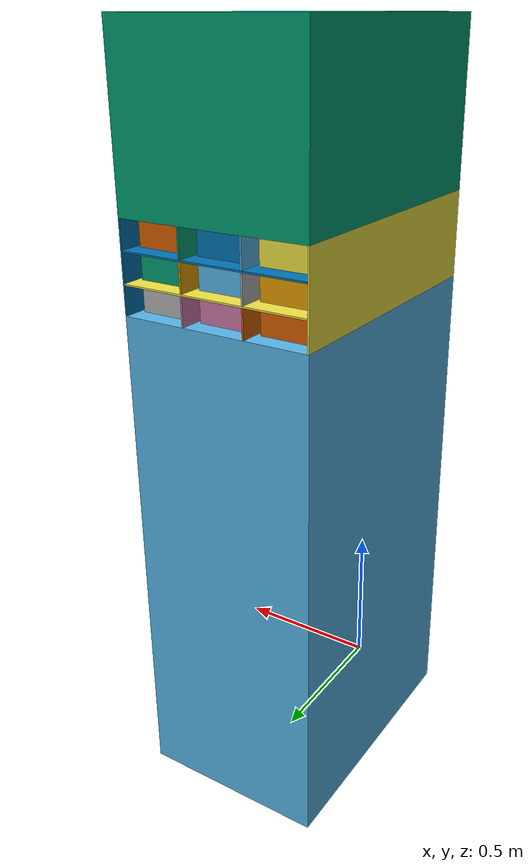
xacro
<?xml version="1.0"?>
<robot xmlns:xacro="http://ros.org/wiki/xacro" name="battery">

  <xacro:property name="M_PI" value="3.1415926535897931" />
  <xacro:property name="distance" value="0.7" />

  <link name="world" />

  <link name="cabinet1">
    <inertial>
      <origin rpy="0 0 0" xyz="0 0 0"/>
      <mass value="1.0"/>
      <inertia ixx="0.001" ixy="0.0" ixz="-0.0" iyy="0.001" iyz="-0.0" izz="0.001"/>
    </inertial>
    <visual>
      <origin rpy="0 0 0 " xyz="0 0 0"/>
      <geometry>
        <mesh filename="package://battery_description/meshes/cabinet1.STL"/>
      </geometry>
    </visual>
    <collision>
      <origin rpy="0 0 0" xyz="0 0 0"/>
      <geometry>
        <mesh filename="package://battery_description/meshes/cabinet1.STL"/>
      </geometry>
    </collision>
  </link>

  <joint name="cabinet1_world" type="fixed">
    <parent link="world" />
    <child link="cabinet1" />
    <origin rpy="0 0 0" xyz="0 0 0" />
  </joint>

  <link name="cabinet2">
    <inertial>
      <origin rpy="0 0 0" xyz="0 0 0"/>
      <mass value="1.0"/>
      <inertia ixx="0.001" ixy="0.0" ixz="-0.0" iyy="0.001" iyz="-0.0" izz="0.001"/>
    </inertial>
    <visual>
      <origin rpy="0 0 0 " xyz="0 0 0"/>
      <geometry>
        <mesh filename="package://battery_description/meshes/cabinet2.STL"/>
      </geometry>
    </visual>
    <collision>
      <origin rpy="0 0 0" xyz="0 0 0"/>
      <geometry>
        <mesh filename="package://battery_description/meshes/cabinet2.STL"/>
      </geometry>
    </collision>
  </link>

  <joint name="cabinet2_joint" type="fixed">
    <parent link="cabinet1" />
    <child link="cabinet2" />
    <origin rpy="0 0 0" xyz="0	0	1.84" />
  </joint>

  <link name="vertical1">
    <inertial>
      <origin rpy="0 0 0" xyz="0 0 0"/>
      <mass value="1.0"/>
      <inertia ixx="0.001" ixy="0.0" ixz="-0.0" iyy="0.001" iyz="-0.0" izz="0.001"/>
    </inertial>
    <visual>
      <origin rpy="0 0 0 " xyz="0 0 0"/>
      <geometry>
        <mesh filename="package://battery_description/meshes/vertical_plate.STL"/>
      </geometry>
    </visual>
    <collision>
      <origin rpy="0 0 0" xyz="0 0 0"/>
      <geometry>
        <mesh filename="package://battery_description/meshes/vertical_plate.STL"/>
      </geometry>
    </collision>
  </link>

  <joint name="vertical_joint1" type="fixed">
    <parent link="cabinet1" />
    <child link="vertical1" />
    <origin rpy="0 0 0" xyz="-0.2979	0	1.705" />
  </joint>

  <link name="vertical2">
    <inertial>
      <origin rpy="0 0 0" xyz="0 0 0"/>
      <mass value="1.0"/>
      <inertia ixx="0.001" ixy="0.0" ixz="-0.0" iyy="0.001" iyz="-0.0" izz="0.001"/>
    </inertial>
    <visual>
      <origin rpy="0 0 0 " xyz="0 0 0"/>
      <geometry>
        <mesh filename="package://battery_description/meshes/vertical_plate.STL"/>
      </geometry>
    </visual>
    <collision>
      <origin rpy="0 0 0" xyz="0 0 0"/>
      <geometry>
        <mesh filename="package://battery_description/meshes/vertical_plate.STL"/>
      </geometry>
    </collision>
  </link>

  <joint name="vertical_joint2" type="fixed">
    <parent link="cabinet1" />
    <child link="vertical2" />
    <origin rpy="0 0 0" xyz="0.2929	0	1.705" />
  </joint>

  <link name="vertical3">
    <inertial>
      <origin rpy="0 0 0" xyz="0 0 0"/>
      <mass value="1.0"/>
      <inertia ixx="0.001" ixy="0.0" ixz="-0.0" iyy="0.001" iyz="-0.0" izz="0.001"/>
    </inertial>
    <visual>
      <origin rpy="0 0 0 " xyz="0 0 0"/>
      <geometry>
        <mesh filename="package://battery_description/meshes/vertical_plate2.STL"/>
      </geometry>
    </visual>
    <collision>
      <origin rpy="0 0 0" xyz="0 0 0"/>
      <geometry>
        <mesh filename="package://battery_description/meshes/vertical_plate2.STL"/>
      </geometry>
    </collision>
  </link>

  <joint name="vertical_joint3" type="fixed">
    <parent link="cabinet1" />
    <child link="vertical3" />
    <origin rpy="0 0 0" xyz="-0.1009	0	1.6133" />
  </joint>

  <link name="vertical4">
    <inertial>
      <origin rpy="0 0 0" xyz="0 0 0"/>
      <mass value="1.0"/>
      <inertia ixx="0.001" ixy="0.0" ixz="-0.0" iyy="0.001" iyz="-0.0" izz="0.001"/>
    </inertial>
    <visual>
      <origin rpy="0 0 0 " xyz="0 0 0"/>
      <geometry>
        <mesh filename="package://battery_description/meshes/vertical_plate2.STL"/>
      </geometry>
    </visual>
    <collision>
      <origin rpy="0 0 0" xyz="0 0 0"/>
      <geometry>
        <mesh filename="package://battery_description/meshes/vertical_plate2.STL"/>
      </geometry>
    </collision>
  </link>

  <joint name="vertical_joint4" type="fixed">
    <parent link="cabinet1" />
    <child link="vertical4" />
    <origin rpy="0 0 0" xyz="0.0961	0	1.6133" />
  </joint>

  <link name="vertical5">
    <inertial>
      <origin rpy="0 0 0" xyz="0 0 0"/>
      <mass value="1.0"/>
      <inertia ixx="0.001" ixy="0.0" ixz="-0.0" iyy="0.001" iyz="-0.0" izz="0.001"/>
    </inertial>
    <visual>
      <origin rpy="0 0 0 " xyz="0 0 0"/>
      <geometry>
        <mesh filename="package://battery_description/meshes/vertical_plate2.STL"/>
      </geometry>
    </visual>
    <collision>
      <origin rpy="0 0 0" xyz="0 0 0"/>
      <geometry>
        <mesh filename="package://battery_description/meshes/vertical_plate2.STL"/>
      </geometry>
    </collision>
  </link>

  <joint name="vertical_joint5" type="fixed">
    <parent link="cabinet1" />
    <child link="vertical5" />
    <origin rpy="0 0 0" xyz="-0.1009	0	1.705" />
  </joint>

  <link name="vertical6">
    <inertial>
      <origin rpy="0 0 0" xyz="0 0 0"/>
      <mass value="1.0"/>
      <inertia ixx="0.001" ixy="0.0" ixz="-0.0" iyy="0.001" iyz="-0.0" izz="0.001"/>
    </inertial>
    <visual>
      <origin rpy="0 0 0 " xyz="0 0 0"/>
      <geometry>
        <mesh filename="package://battery_description/meshes/vertical_plate2.STL"/>
      </geometry>
    </visual>
    <collision>
      <origin rpy="0 0 0" xyz="0 0 0"/>
      <geometry>
        <mesh filename="package://battery_description/meshes/vertical_plate2.STL"/>
      </geometry>
    </collision>
  </link>

  <joint name="vertical_joint6" type="fixed">
    <parent link="cabinet1" />
    <child link="vertical6" />
    <origin rpy="0 0 0" xyz="0.0961	0	1.705" />
  </joint>

  <link name="vertical7">
    <inertial>
      <origin rpy="0 0 0" xyz="0 0 0"/>
      <mass value="1.0"/>
      <inertia ixx="0.001" ixy="0.0" ixz="-0.0" iyy="0.001" iyz="-0.0" izz="0.001"/>
    </inertial>
    <visual>
      <origin rpy="0 0 0 " xyz="0 0 0"/>
      <geometry>
        <mesh filename="package://battery_description/meshes/vertical_plate2.STL"/>
      </geometry>
    </visual>
    <collision>
      <origin rpy="0 0 0" xyz="0 0 0"/>
      <geometry>
        <mesh filename="package://battery_description/meshes/vertical_plate2.STL"/>
      </geometry>
    </collision>
  </link>

  <joint name="vertical_joint7" type="fixed">
    <parent link="cabinet1" />
    <child link="vertical7" />
    <origin rpy="0 0 0" xyz="-0.1009	0	1.7967" />
  </joint>

  <link name="vertical8">
    <inertial>
      <origin rpy="0 0 0" xyz="0 0 0"/>
      <mass value="1.0"/>
      <inertia ixx="0.001" ixy="0.0" ixz="-0.0" iyy="0.001" iyz="-0.0" izz="0.001"/>
    </inertial>
    <visual>
      <origin rpy="0 0 0 " xyz="0 0 0"/>
      <geometry>
        <mesh filename="package://battery_description/meshes/vertical_plate2.STL"/>
      </geometry>
    </visual>
    <collision>
      <origin rpy="0 0 0" xyz="0 0 0"/>
      <geometry>
        <mesh filename="package://battery_description/meshes/vertical_plate2.STL"/>
      </geometry>
    </collision>
  </link>

  <joint name="vertical_joint8" type="fixed">
    <parent link="cabinet1" />
    <child link="vertical8" />
    <origin rpy="0 0 0" xyz="0.0961	0	1.7967" />
  </joint>

  <link name="horizon1">
    <inertial>
      <origin rpy="0 0 0" xyz="0 0 0"/>
      <mass value="1.0"/>
      <inertia ixx="0.001" ixy="0.0" ixz="-0.0" iyy="0.001" iyz="-0.0" izz="0.001"/>
    </inertial>
    <visual>
      <origin rpy="0 0 0 " xyz="0 0 0"/>
      <geometry>
        <mesh filename="package://battery_description/meshes/horiz_plate.STL"/>
      </geometry>
    </visual>
    <collision>
      <origin rpy="0 0 0" xyz="0 0 0"/>
      <geometry>
        <mesh filename="package://battery_description/meshes/horiz_plate.STL"/>
      </geometry>
    </collision>
  </link>

  <joint name="horiz_joint1" type="fixed">
    <parent link="cabinet1" />
    <child link="horizon1" />
    <origin rpy="0 0 0" xyz="0.00015	0	1.6617" />
  </joint>

  <link name="horizon2">
    <inertial>
      <origin rpy="0 0 0" xyz="0 0 0"/>
      <mass value="1.0"/>
      <inertia ixx="0.001" ixy="0.0" ixz="-0.0" iyy="0.001" iyz="-0.0" izz="0.001"/>
    </inertial>
    <visual>
      <origin rpy="0 0 0 " xyz="0 0 0"/>
      <geometry>
        <mesh filename="package://battery_description/meshes/horiz_plate.STL"/>
      </geometry>
    </visual>
    <collision>
      <origin rpy="0 0 0" xyz="0 0 0"/>
      <geometry>
        <mesh filename="package://battery_description/meshes/horiz_plate.STL"/>
      </geometry>
    </collision>
  </link>

  <joint name="horiz_joint2" type="fixed">
    <parent link="cabinet1" />
    <child link="horizon2" />
    <origin rpy="0 0 0" xyz="0.00015	0	1.7534" />
  </joint>

  <link name="battery1">
    <inertial>
      <origin rpy="0 0 0" xyz="0 0 0"/>
      <mass value="1.0"/>
      <inertia ixx="0.001" ixy="0.0" ixz="-0.0" iyy="0.001" iyz="-0.0" izz="0.001"/>
    </inertial>
    <visual>
      <origin rpy="0 0 0 " xyz="0 0 0"/>
      <geometry>
        <mesh filename="package://battery_description/meshes/battery1.STL"/>
      </geometry>
    </visual>
    <collision>
      <origin rpy="0 0 0" xyz="0 0 0"/>
      <geometry>
        <mesh filename="package://battery_description/meshes/battery1.STL"/>
      </geometry>
    </collision>
  </link>

  <joint name="battery_joint1" type="prismatic">
    <parent link="cabinet1" />
    <child link="battery1" />
    <origin rpy="0 0 0" xyz="-0.1969	0	1.6093" />
    <axis xyz="0 -1 0"/>
    <limit effort="100" lower="0.0" upper="${distance}" velocity="0.2"/>
    <dynamics damping="0.3"/>
  </joint>

  <link name="battery2">
    <inertial>
      <origin rpy="0 0 0" xyz="0 0 0"/>
      <mass value="1.0"/>
      <inertia ixx="0.001" ixy="0.0" ixz="-0.0" iyy="0.001" iyz="-0.0" izz="0.001"/>
    </inertial>
    <visual>
      <origin rpy="0 0 0 " xyz="0 0 0"/>
      <geometry>
        <mesh filename="package://battery_description/meshes/battery1.STL"/>
      </geometry>
    </visual>
    <collision>
      <origin rpy="0 0 0" xyz="0 0 0"/>
      <geometry>
        <mesh filename="package://battery_description/meshes/battery1.STL"/>
      </geometry>
    </collision>
  </link>

  <joint name="battery_joint2" type="prismatic">
    <parent link="cabinet1" />
    <child link="battery2" />
    <origin rpy="0 0 0" xyz="0	0	1.6093" />
    <axis xyz="0 -1 0"/>
    <limit effort="100" lower="0.0" upper="${distance}" velocity="0.2"/>
    <dynamics damping="0.3"/>
  </joint>

  <link name="battery3">
    <inertial>
      <origin rpy="0 0 0" xyz="0 0 0"/>
      <mass value="1.0"/>
      <inertia ixx="0.001" ixy="0.0" ixz="-0.0" iyy="0.001" iyz="-0.0" izz="0.001"/>
    </inertial>
    <visual>
      <origin rpy="0 0 0 " xyz="0 0 0"/>
      <geometry>
        <mesh filename="package://battery_description/meshes/battery1.STL"/>
      </geometry>
    </visual>
    <collision>
      <origin rpy="0 0 0" xyz="0 0 0"/>
      <geometry>
        <mesh filename="package://battery_description/meshes/battery1.STL"/>
      </geometry>
    </collision>
  </link>

  <joint name="battery_joint3" type="prismatic">
    <parent link="cabinet1" />
    <child link="battery3" />
    <origin rpy="0 0 0" xyz="0.1971	0	1.6093" />
    <axis xyz="0 -1 0"/>
    <limit effort="100" lower="0.0" upper="${distance}" velocity="0.2"/>
    <dynamics damping="0.3"/>
  </joint>

  <link name="battery4">
    <inertial>
      <origin rpy="0 0 0" xyz="0 0 0"/>
      <mass value="1.0"/>
      <inertia ixx="0.001" ixy="0.0" ixz="-0.0" iyy="0.001" iyz="-0.0" izz="0.001"/>
    </inertial>
    <visual>
      <origin rpy="0 0 0 " xyz="0 0 0"/>
      <geometry>
        <mesh filename="package://battery_description/meshes/battery1.STL"/>
      </geometry>
    </visual>
    <collision>
      <origin rpy="0 0 0" xyz="0 0 0"/>
      <geometry>
        <mesh filename="package://battery_description/meshes/battery1.STL"/>
      </geometry>
    </collision>
  </link>

  <joint name="battery_joint4" type="prismatic">
    <parent link="cabinet1" />
    <child link="battery4" />
    <origin rpy="0 0 0" xyz="-0.1969	0	1.701" />
    <axis xyz="0 -1 0"/>
    <limit effort="100" lower="0.0" upper="${distance}" velocity="0.2"/>
    <dynamics damping="0.3"/>
  </joint>

  <link name="battery5">
    <inertial>
      <origin rpy="0 0 0" xyz="0 0 0"/>
      <mass value="1.0"/>
      <inertia ixx="0.001" ixy="0.0" ixz="-0.0" iyy="0.001" iyz="-0.0" izz="0.001"/>
    </inertial>
    <visual>
      <origin rpy="0 0 0 " xyz="0 0 0"/>
      <geometry>
        <mesh filename="package://battery_description/meshes/battery1.STL"/>
      </geometry>
    </visual>
    <collision>
      <origin rpy="0 0 0" xyz="0 0 0"/>
      <geometry>
        <mesh filename="package://battery_description/meshes/battery1.STL"/>
      </geometry>
    </collision>
  </link>

  <joint name="battery_joint5" type="prismatic">
    <parent link="cabinet1" />
    <child link="battery5" />
    <origin rpy="0 0 0" xyz="0	0	1.701" />
    <axis xyz="0 -1 0"/>
    <limit effort="100" lower="0.0" upper="${distance}" velocity="0.2"/>
    <dynamics damping="0.3"/>
  </joint>

  <link name="battery6">
    <inertial>
      <origin rpy="0 0 0" xyz="0 0 0"/>
      <mass value="1.0"/>
      <inertia ixx="0.001" ixy="0.0" ixz="-0.0" iyy="0.001" iyz="-0.0" izz="0.001"/>
    </inertial>
    <visual>
      <origin rpy="0 0 0 " xyz="0 0 0"/>
      <geometry>
        <mesh filename="package://battery_description/meshes/battery1.STL"/>
      </geometry>
    </visual>
    <collision>
      <origin rpy="0 0 0" xyz="0 0 0"/>
      <geometry>
        <mesh filename="package://battery_description/meshes/battery1.STL"/>
      </geometry>
    </collision>
  </link>

  <joint name="battery_joint6" type="prismatic">
    <parent link="cabinet1" />
    <child link="battery6" />
    <origin rpy="0 0 0" xyz="0.1971	0	1.701" />
    <axis xyz="0 -1 0"/>
    <limit effort="100" lower="0.0" upper="${distance}" velocity="0.2"/>
    <dynamics damping="0.3"/>
  </joint>

  <link name="battery7">
    <inertial>
      <origin rpy="0 0 0" xyz="0 0 0"/>
      <mass value="1.0"/>
      <inertia ixx="0.001" ixy="0.0" ixz="-0.0" iyy="0.001" iyz="-0.0" izz="0.001"/>
    </inertial>
    <visual>
      <origin rpy="0 0 0 " xyz="0 0 0"/>
      <geometry>
        <mesh filename="package://battery_description/meshes/battery1.STL"/>
      </geometry>
    </visual>
    <collision>
      <origin rpy="0 0 0" xyz="0 0 0"/>
      <geometry>
        <mesh filename="package://battery_description/meshes/battery1.STL"/>
      </geometry>
    </collision>
  </link>

  <joint name="battery_joint7" type="prismatic">
    <parent link="cabinet1" />
    <child link="battery7" />
    <origin rpy="0 0 0" xyz="-0.1969	0	1.7927" />
    <axis xyz="0 -1 0"/>
    <limit effort="100" lower="0.0" upper="${distance}" velocity="0.2"/>
    <dynamics damping="0.3"/>
  </joint>

  <link name="battery8">
    <inertial>
      <origin rpy="0 0 0" xyz="0 0 0"/>
      <mass value="1.0"/>
      <inertia ixx="0.001" ixy="0.0" ixz="-0.0" iyy="0.001" iyz="-0.0" izz="0.001"/>
    </inertial>
    <visual>
      <origin rpy="0 0 0 " xyz="0 0 0"/>
      <geometry>
        <mesh filename="package://battery_description/meshes/battery1.STL"/>
      </geometry>
    </visual>
    <collision>
      <origin rpy="0 0 0" xyz="0 0 0"/>
      <geometry>
        <mesh filename="package://battery_description/meshes/battery1.STL"/>
      </geometry>
    </collision>
  </link>

  <joint name="battery_joint8" type="prismatic">
    <parent link="cabinet1" />
    <child link="battery8" />
    <origin rpy="0 0 0" xyz="0	0	1.7927" />
    <axis xyz="0 -1 0"/>
    <limit effort="100" lower="0.0" upper="${distance}" velocity="0.2"/>
    <dynamics damping="0.3"/>
  </joint>

  <link name="battery9">
    <inertial>
      <origin rpy="0 0 0" xyz="0 0 0"/>
      <mass value="1.0"/>
      <inertia ixx="0.001" ixy="0.0" ixz="-0.0" iyy="0.001" iyz="-0.0" izz="0.001"/>
    </inertial>
    <visual>
      <origin rpy="0 0 0 " xyz="0 0 0"/>
      <geometry>
        <mesh filename="package://battery_description/meshes/battery1.STL"/>
      </geometry>
    </visual>
    <collision>
      <origin rpy="0 0 0" xyz="0 0 0"/>
      <geometry>
        <mesh filename="package://battery_description/meshes/battery1.STL"/>
      </geometry>
    </collision>
  </link>

  <joint name="battery_joint9" type="prismatic">
    <parent link="cabinet1" />
    <child link="battery9" />
    <origin rpy="0 0 0" xyz="0.1971	0	1.7927" />
    <axis xyz="0 -1 0"/>
    <limit effort="100" lower="0.0" upper="${distance}" velocity="0.2"/>
    <dynamics damping="0.3"/>
  </joint>

  <link name="handle1">
    <inertial>
      <origin rpy="0 0 0" xyz="0 0 0"/>
      <mass value="1.0"/>
      <inertia ixx="0.001" ixy="0.0" ixz="-0.0" iyy="0.001" iyz="-0.0" izz="0.001"/>
    </inertial>
    <visual>
      <origin rpy="0 0 0 " xyz="0 0 0"/>
      <geometry>
        <mesh filename="package://battery_description/meshes/battery2.STL"/>
      </geometry>
    </visual>
    <collision>
      <origin rpy="0 0 0" xyz="0 0 0"/>
      <geometry>
        <mesh filename="package://battery_description/meshes/battery2.STL"/>
      </geometry>
    </collision>
  </link>

  <joint name="handle_joint1" type="fixed">
    <parent link="battery1" />
    <child link="handle1" />
    <origin rpy="0 0 0" xyz="0	-0.058	0" />
  </joint>

  <link name="handle2">
    <inertial>
      <origin rpy="0 0 0" xyz="0 0 0"/>
      <mass value="1.0"/>
      <inertia ixx="0.001" ixy="0.0" ixz="-0.0" iyy="0.001" iyz="-0.0" izz="0.001"/>
    </inertial>
    <visual>
      <origin rpy="0 0 0 " xyz="0 0 0"/>
      <geometry>
        <mesh filename="package://battery_description/meshes/battery2.STL"/>
      </geometry>
    </visual>
    <collision>
      <origin rpy="0 0 0" xyz="0 0 0"/>
      <geometry>
        <mesh filename="package://battery_description/meshes/battery2.STL"/>
      </geometry>
    </collision>
  </link>

  <joint name="handle_joint2" type="fixed">
    <parent link="battery2" />
    <child link="handle2" />
    <origin rpy="0 0 0" xyz="0	-0.058	0" />
  </joint>

  <link name="handle3">
    <inertial>
      <origin rpy="0 0 0" xyz="0 0 0"/>
      <mass value="1.0"/>
      <inertia ixx="0.001" ixy="0.0" ixz="-0.0" iyy="0.001" iyz="-0.0" izz="0.001"/>
    </inertial>
    <visual>
      <origin rpy="0 0 0 " xyz="0 0 0"/>
      <geometry>
        <mesh filename="package://battery_description/meshes/battery2.STL"/>
      </geometry>
    </visual>
    <collision>
      <origin rpy="0 0 0" xyz="0 0 0"/>
      <geometry>
        <mesh filename="package://battery_description/meshes/battery2.STL"/>
      </geometry>
    </collision>
  </link>

  <joint name="handle_joint3" type="fixed">
    <parent link="battery3" />
    <child link="handle3" />
    <origin rpy="0 0 0" xyz="0	-0.058	0" />
  </joint>

  <link name="handle4">
    <inertial>
      <origin rpy="0 0 0" xyz="0 0 0"/>
      <mass value="1.0"/>
      <inertia ixx="0.001" ixy="0.0" ixz="-0.0" iyy="0.001" iyz="-0.0" izz="0.001"/>
    </inertial>
    <visual>
      <origin rpy="0 0 0 " xyz="0 0 0"/>
      <geometry>
        <mesh filename="package://battery_description/meshes/battery2.STL"/>
      </geometry>
    </visual>
    <collision>
      <origin rpy="0 0 0" xyz="0 0 0"/>
      <geometry>
        <mesh filename="package://battery_description/meshes/battery2.STL"/>
      </geometry>
    </collision>
  </link>

  <joint name="handle_joint4" type="fixed">
    <parent link="battery4" />
    <child link="handle4" />
    <origin rpy="0 0 0" xyz="0	-0.058	0" />
  </joint>

  <link name="handle5">
    <inertial>
      <origin rpy="0 0 0" xyz="0 0 0"/>
      <mass value="1.0"/>
      <inertia ixx="0.001" ixy="0.0" ixz="-0.0" iyy="0.001" iyz="-0.0" izz="0.001"/>
    </inertial>
    <visual>
      <origin rpy="0 0 0 " xyz="0 0 0"/>
      <geometry>
        <mesh filename="package://battery_description/meshes/battery2.STL"/>
      </geometry>
    </visual>
    <collision>
      <origin rpy="0 0 0" xyz="0 0 0"/>
      <geometry>
        <mesh filename="package://battery_description/meshes/battery2.STL"/>
      </geometry>
    </collision>
  </link>

  <joint name="handle_joint5" type="fixed">
    <parent link="battery5" />
    <child link="handle5" />
    <origin rpy="0 0 0" xyz="0	-0.058	0" />
  </joint>

  <link name="handle6">
    <inertial>
      <origin rpy="0 0 0" xyz="0 0 0"/>
      <mass value="1.0"/>
      <inertia ixx="0.001" ixy="0.0" ixz="-0.0" iyy="0.001" iyz="-0.0" izz="0.001"/>
    </inertial>
    <visual>
      <origin rpy="0 0 0 " xyz="0 0 0"/>
      <geometry>
        <mesh filename="package://battery_description/meshes/battery2.STL"/>
      </geometry>
    </visual>
    <collision>
      <origin rpy="0 0 0" xyz="0 0 0"/>
      <geometry>
        <mesh filename="package://battery_description/meshes/battery2.STL"/>
      </geometry>
    </collision>
  </link>

  <joint name="handle_joint6" type="fixed">
    <parent link="battery6" />
    <child link="handle6" />
    <origin rpy="0 0 0" xyz="0	-0.058	0" />
  </joint>

  <link name="handle7">
    <inertial>
      <origin rpy="0 0 0" xyz="0 0 0"/>
      <mass value="1.0"/>
      <inertia ixx="0.001" ixy="0.0" ixz="-0.0" iyy="0.001" iyz="-0.0" izz="0.001"/>
    </inertial>
    <visual>
      <origin rpy="0 0 0 " xyz="0 0 0"/>
      <geometry>
        <mesh filename="package://battery_description/meshes/battery2.STL"/>
      </geometry>
    </visual>
    <collision>
      <origin rpy="0 0 0" xyz="0 0 0"/>
      <geometry>
        <mesh filename="package://battery_description/meshes/battery2.STL"/>
      </geometry>
    </collision>
  </link>

  <joint name="handle_joint7" type="fixed">
    <parent link="battery7" />
    <child link="handle7" />
    <origin rpy="0 0 0" xyz="0	-0.058	0" />
  </joint>

  <link name="handle8">
    <inertial>
      <origin rpy="0 0 0" xyz="0 0 0"/>
      <mass value="1.0"/>
      <inertia ixx="0.001" ixy="0.0" ixz="-0.0" iyy="0.001" iyz="-0.0" izz="0.001"/>
    </inertial>
    <visual>
      <origin rpy="0 0 0 " xyz="0 0 0"/>
      <geometry>
        <mesh filename="package://battery_description/meshes/battery2.STL"/>
      </geometry>
    </visual>
    <collision>
      <origin rpy="0 0 0" xyz="0 0 0"/>
      <geometry>
        <mesh filename="package://battery_description/meshes/battery2.STL"/>
      </geometry>
    </collision>
  </link>

  <joint name="handle_joint8" type="fixed">
    <parent link="battery8" />
    <child link="handle8" />
    <origin rpy="0 0 0" xyz="0	-0.058	0" />
  </joint>

  <link name="handle9">
    <inertial>
      <origin rpy="0 0 0" xyz="0 0 0"/>
      <mass value="1.0"/>
      <inertia ixx="0.001" ixy="0.0" ixz="-0.0" iyy="0.001" iyz="-0.0" izz="0.001"/>
    </inertial>
    <visual>
      <origin rpy="0 0 0 " xyz="0 0 0"/>
      <geometry>
        <mesh filename="package://battery_description/meshes/battery2.STL"/>
      </geometry>
    </visual>
    <collision>
      <origin rpy="0 0 0" xyz="0 0 0"/>
      <geometry>
        <mesh filename="package://battery_description/meshes/battery2.STL"/>
      </geometry>
    </collision>
  </link>

  <joint name="handle_joint9" type="fixed">
    <parent link="battery9" />
    <child link="handle9" />
    <origin rpy="0 0 0" xyz="0	-0.058	0" />
  </joint>

</robot>
